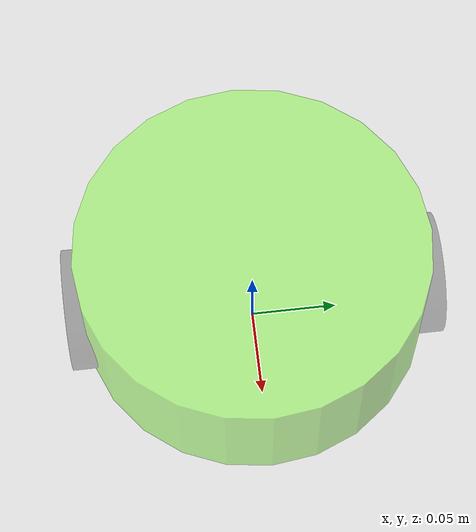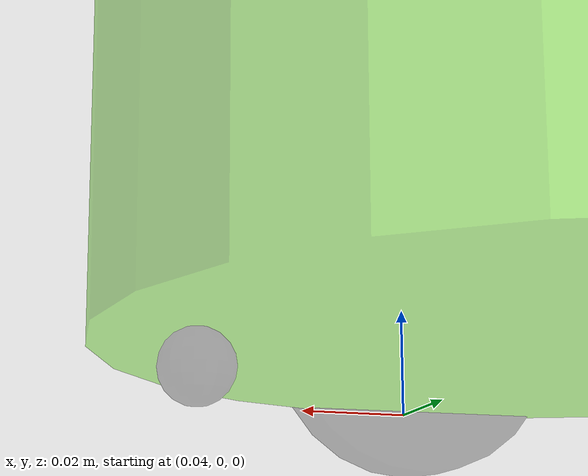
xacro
<robot name="mycar" xmlns:xacro="http://wiki.ros.org/xacro">
    <!-- 属性定义 -->
    <xacro:property name="footprint_radius" value="0.001" />

    <!-- 1.添加 base_footprint -->
    <link name="base_footprint">
        <visual>
            <geometry>
                <sphere radius="${footprint_radius}" />
            </geometry>
        </visual>
    </link>

    <!-- 底盘 -->
    <!--
        形状：圆柱
        半径：0.1m
        高度：0.08m
        离地：0.15m
     -->
    <xacro:property name="base_radius" value="0.1" />
    <xacro:property name="base_length" value="0.08" />
    <xacro:property name="lidi" value="0.015" />
    <xacro:property name="base_joint_z" value="${base_length / 2 + lidi}" />
    <link name="base_link">
        <visual>
            <geometry>
                <cylinder radius="${base_radius}" length="${base_length}" />
            </geometry>

            <origin xyz="0 0 0" rpy="0 0 0" />

            <material name="baselink_color">
                <color rgba="0.5 1.0 0.2 0.5" />
            </material>
        </visual>
    </link>
    <!-- 2-2.joint -->
    <joint name="link2footprint" type="fixed">
        <parent link="base_footprint"  />
        <child link="base_link" />
        <origin xyz="0.0 0.0 ${base_joint_z}" rpy="0 0 0" />
    </joint>

    <!-- 属性调用 -->

        <!-- 驱动轮 -->
    <!--
        形状：圆柱
        半径：0.035m
        长度：0.015m
     -->
     <!-- link -->
     <xacro:property name ="wheel_radius" value="0.035" />
     <xacro:property name ="wheel_length" value="0.015" />
     <xacro:property name ="PI" value="3.1415927" />
     <xacro:property name ="wheel_joint_z" value="${-(base_length / 2 +lidi - wheel_radius)}" />

     <xacro:macro name="wheel_func" params="wheel_name flag">

        <link name="${wheel_name}_wheel">
            <visual>
                <geometry>
                    <cylinder radius="${wheel_radius}" length="${wheel_length}" />
                </geometry>

                <origin xyz="0 0 0" rpy="${PI / 2} 0 0" />

                <material name="wheel_color">
                    <color rgba="0 0 0 0.3" />
                </material>
            </visual>
        </link>

        <!-- joint -->
        <joint name="${wheel_name}2link" type="continuous">
            <parent link="base_link"  />
            <child link="${wheel_name}_wheel" />
            <origin xyz="0.0 ${0.1 * flag} ${wheel_joint_z}" rpy="0 0 0" />
            <axis xyz="0 1 0" />
        </joint>

     </xacro:macro>
    <xacro:wheel_func wheel_name="left" flag="1" />
    <xacro:wheel_func wheel_name="right" flag="-1" />

    <!-- 万向轮 -->
    <!--
        现状：球
        半径：0.0075m
     -->
    <xacro:property name="small_wheel_radius" value="0.0075" />
    <xacro:property name="small_joint_z" value="${-(base_length / 2 + lidi - small_wheel_radius)}" />

    <xacro:macro name="small_wheel_func" params="small_wheel_name flag">
     <!-- 属性 -->
    <link name="${small_wheel_name}_wheel">
        <visual>
            <geometry>
                <sphere radius="${small_wheel_radius}" />
            </geometry>

            <origin xyz="0 0 0" rpy="0 0 0" />

            <material name="wheel_color">
                <color rgba="0 0 0 0.3" />
            </material>
        </visual>
    </link>

    <joint name="${small_wheel_name}2link" type="continuous">
        <parent link="base_link"  />
        <child link="${small_wheel_name}_wheel" />
        <origin xyz="${0.08*flag} 0.0 ${small_joint_z}" rpy="0 0 0" />
        <axis xyz="0 1 0" />
    </joint>

    </xacro:macro >

    <xacro:small_wheel_func small_wheel_name="front" flag="1" />
    <xacro:small_wheel_func small_wheel_name="back" flag="-1" />

    <!-- 算术运算 -->

</robot>
